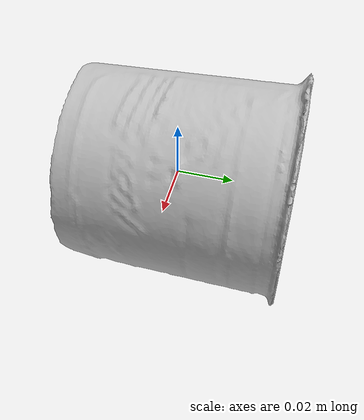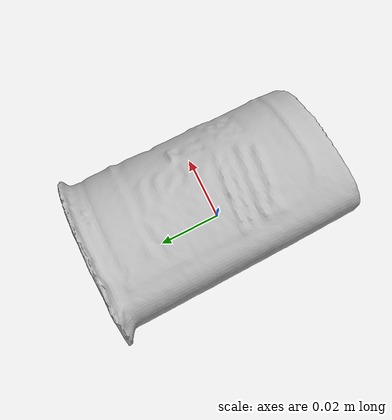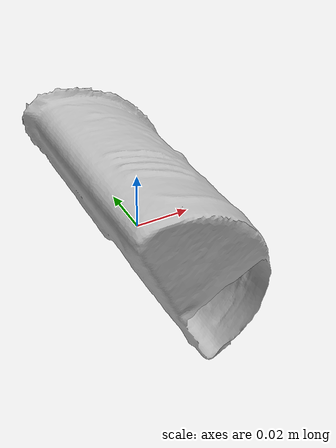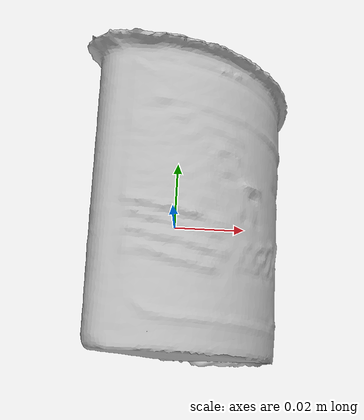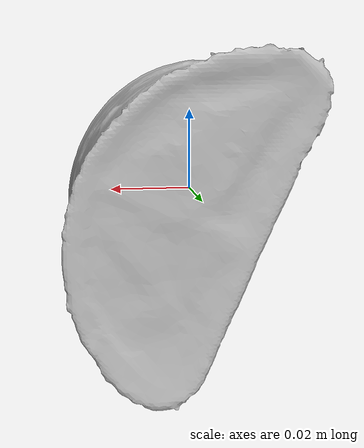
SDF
<?xml version='1.0'?>
<sdf version="1.4">
  <model name="NutellaGo">
    <static>false</static>
    <link name="link">
      <inertial>
        <pose>0.007190713677170251 0.004311981449328724 1.828341733991906e-05 1.5168190472606595 0.42410710148281566 3.141574801047997</pose>
        <mass>0.01984503113000295</mass>
        <inertia>
          <ixx>1.810483254746704e-05</ixx>
          <ixy>1.4236832352812946e-21</ixy>
          <ixz>1.746848483822551e-21</ixz>
          <iyy>1.2288260789730155e-05</iyy>
          <iyz>-3.818766055298712e-21</iyz>
          <izz>1.0188388917982181e-05</izz>
        </inertia>
      </inertial>
      <collision name="collision">
        <geometry>
          <mesh>
            <!-- Use a downsampled mesh for collisions -->
            <uri>model:///NutellaGo/NutellaGo_250_collision.obj</uri>
	        </mesh>
        </geometry>
        <surface>
      </surface>
      </collision>
      <visual name="visual">
        <geometry>
          <mesh>
            <uri>model:///NutellaGo/NutellaGo_25k_tex.obj</uri>
	        </mesh>
        </geometry>
        <material>
          <script>
            <uri>model:///NutellaGo/NutellaGo.material</uri>
            <name>NutellaGo</name>
          </script>
        </material>
      </visual>
    </link>
  </model>
</sdf>
